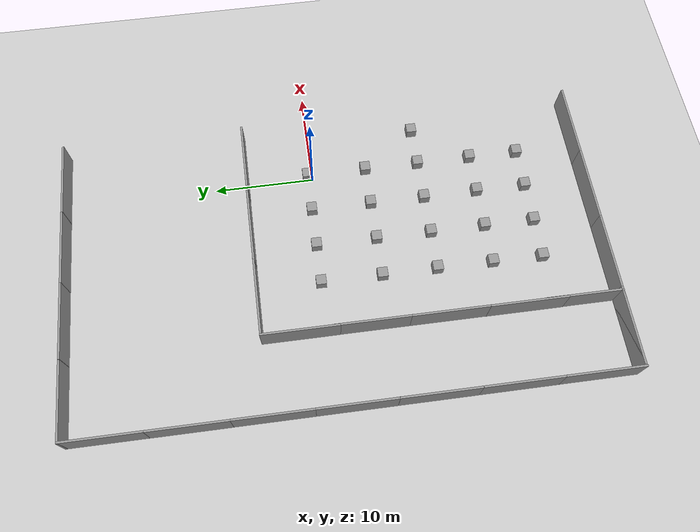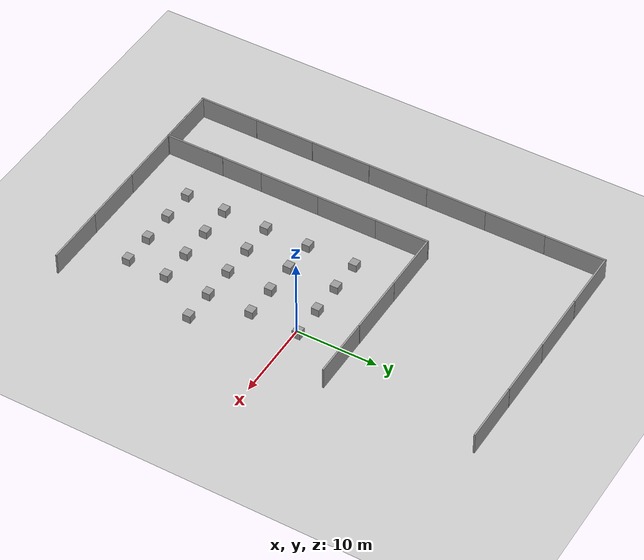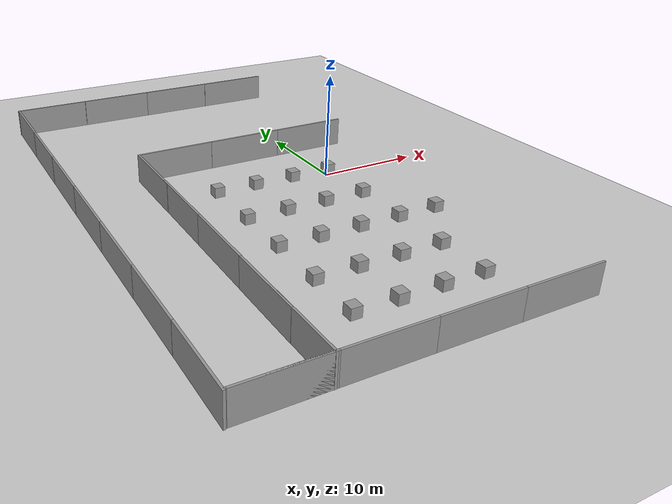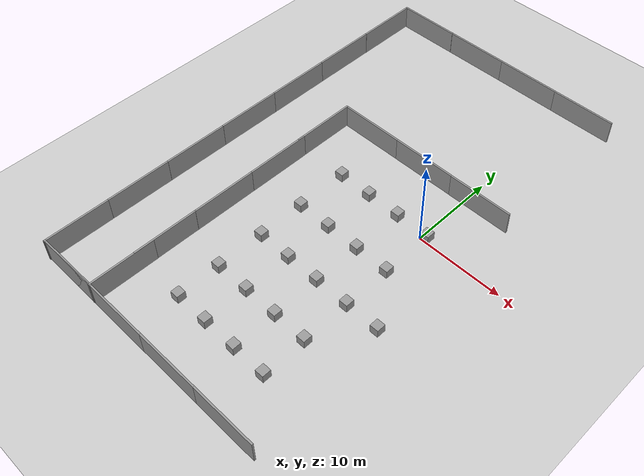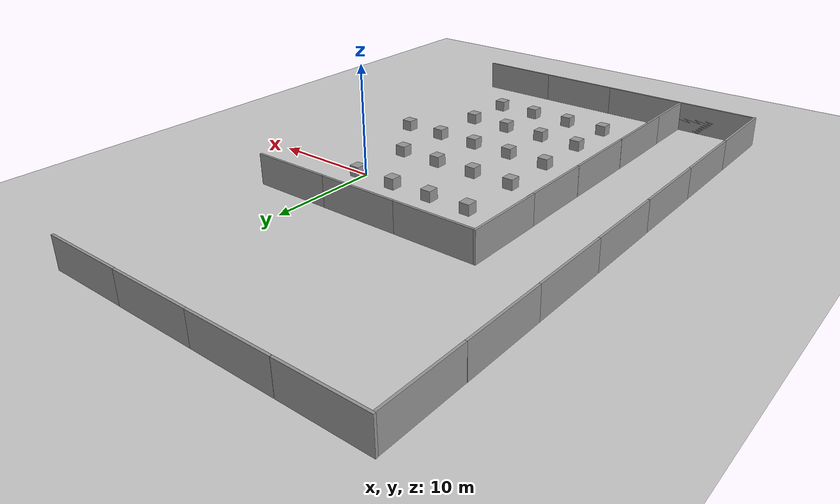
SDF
<sdf version="1.6">
 <world name="default">
  <model name="ground_plane">
   <static>1</static>
   <link name="link">
    <collision name="collision">
     <geometry><plane><normal>0 0 1</normal><size>100 100</size></plane></geometry>
     <surface>
      <contact><collide_bitmask>65535</collide_bitmask></contact>
      <friction><ode><mu>100</mu><mu2>50</mu2></ode></friction>
     </surface>
    </collision>
    <visual name="visual">
     <cast_shadows>0</cast_shadows>
     <geometry><plane><normal>0 0 1</normal><size>100 100</size></plane></geometry>
     <material>
      <script><uri>file://media/materials/scripts/gazebo.material</uri><name>Gazebo/Grey</name></script>
     </material>
    </visual>
   </link>
  </model>
  <model name="grey_wall">
   <static>1</static>
   <link name="link">
    <pose>0 0 1.4 0 -0 0</pose>
    <collision name="collision"><geometry><box><size>7.5 0.2 2.8</size></box></geometry></collision>
    <visual name="visual">
     <cast_shadows>0</cast_shadows>
     <geometry><box><size>7.5 0.2 2.8</size></box></geometry>
     <material>
      <script>
       <uri>model://grey_wall/materials/scripts</uri>
       <uri>model://grey_wall/materials/textures</uri>
       <name>vrc/grey_wall</name>
      </script>
     </material>
    </visual>
   </link>
   <pose>1.90151 24.9221 0 0 -0 0</pose>
  </model>
  <model name="grey_wall_0_clone_1">
   <static>1</static>
   <link name="link">
    <pose>0 0 1.4 0 -0 0</pose>
    <collision name="collision"><geometry><box><size>7.5 0.2 2.8</size></box></geometry></collision>
    <visual name="visual">
     <cast_shadows>0</cast_shadows>
     <geometry><box><size>7.5 0.2 2.8</size></box></geometry>
     <material>
      <script>
       <uri>model://grey_wall/materials/scripts</uri>
       <uri>model://grey_wall/materials/textures</uri>
       <name>vrc/grey_wall</name>
      </script>
     </material>
    </visual>
   </link>
   <pose>-5.60602 24.9338 0 0 -0 0</pose>
  </model>
  <model name="grey_wall_0_clone_2">
   <static>1</static>
   <link name="link">
    <pose>0 0 1.4 0 -0 0</pose>
    <collision name="collision"><geometry><box><size>7.5 0.2 2.8</size></box></geometry></collision>
    <visual name="visual">
     <cast_shadows>0</cast_shadows>
     <geometry><box><size>7.5 0.2 2.8</size></box></geometry>
     <material>
      <script>
       <uri>model://grey_wall/materials/scripts</uri>
       <uri>model://grey_wall/materials/textures</uri>
       <name>vrc/grey_wall</name>
      </script>
     </material>
    </visual>
   </link>
   <pose>-13.0699 24.9384 0 0 -0 0</pose>
  </model>
  <model name="grey_wall_0_clone_3">
   <static>1</static>
   <link name="link">
    <pose>0 0 1.4 0 -0 0</pose>
    <collision name="collision"><geometry><box><size>7.5 0.2 2.8</size></box></geometry></collision>
    <visual name="visual">
     <cast_shadows>0</cast_shadows>
     <geometry><box><size>7.5 0.2 2.8</size></box></geometry>
     <material>
      <script>
       <uri>model://grey_wall/materials/scripts</uri>
       <uri>model://grey_wall/materials/textures</uri>
       <name>vrc/grey_wall</name>
      </script>
     </material>
    </visual>
   </link>
   <pose>-20.595 24.9391 0 0 -0 0</pose>
  </model>
  <model name="grey_wall_0_clone_4">
   <static>1</static>
   <link name="link">
    <pose>0 0 1.4 0 -0 0</pose>
    <collision name="collision"><geometry><box><size>7.5 0.2 2.8</size></box></geometry></collision>
    <visual name="visual">
     <cast_shadows>0</cast_shadows>
     <geometry><box><size>7.5 0.2 2.8</size></box></geometry>
     <material>
      <script>
       <uri>model://grey_wall/materials/scripts</uri>
       <uri>model://grey_wall/materials/textures</uri>
       <name>vrc/grey_wall</name>
      </script>
     </material>
    </visual>
   </link>
   <pose>-24.228 21.2835 0 0 -0 1.57</pose>
  </model>
  <model name="grey_wall_0_clone_4_clone">
   <static>1</static>
   <link name="link">
    <pose>0 0 1.4 0 -0 0</pose>
    <collision name="collision"><geometry><box><size>7.5 0.2 2.8</size></box></geometry></collision>
    <visual name="visual">
     <cast_shadows>0</cast_shadows>
     <geometry><box><size>7.5 0.2 2.8</size></box></geometry>
     <material>
      <script>
       <uri>model://grey_wall/materials/scripts</uri>
       <uri>model://grey_wall/materials/textures</uri>
       <name>vrc/grey_wall</name>
      </script>
     </material>
    </visual>
   </link>
   <pose>-24.2399 13.7777 0 0 -0 1.57</pose>
  </model>
  <model name="grey_wall_0_clone_4_clone_0">
   <static>1</static>
   <link name="link">
    <pose>0 0 1.4 0 -0 0</pose>
    <collision name="collision"><geometry><box><size>7.5 0.2 2.8</size></box></geometry></collision>
    <visual name="visual">
     <cast_shadows>0</cast_shadows>
     <geometry><box><size>7.5 0.2 2.8</size></box></geometry>
     <material>
      <script>
       <uri>model://grey_wall/materials/scripts</uri>
       <uri>model://grey_wall/materials/textures</uri>
       <name>vrc/grey_wall</name>
      </script>
     </material>
    </visual>
   </link>
   <pose>-24.2386 6.27919 0 0 -0 1.57</pose>
  </model>
  <model name="grey_wall_0_clone_4_clone_1">
   <static>1</static>
   <link name="link">
    <pose>0 0 1.4 0 -0 0</pose>
    <collision name="collision"><geometry><box><size>7.5 0.2 2.8</size></box></geometry></collision>
    <visual name="visual">
     <cast_shadows>0</cast_shadows>
     <geometry><box><size>7.5 0.2 2.8</size></box></geometry>
     <material>
      <script>
       <uri>model://grey_wall/materials/scripts</uri>
       <uri>model://grey_wall/materials/textures</uri>
       <name>vrc/grey_wall</name>
      </script>
     </material>
    </visual>
   </link>
   <pose>-24.2386 -1.21435 0 0 -0 1.57</pose>
  </model>
  <model name="grey_wall_0_clone_4_clone_2">
   <static>1</static>
   <link name="link">
    <pose>0 0 1.4 0 -0 0</pose>
    <collision name="collision"><geometry><box><size>7.5 0.2 2.8</size></box></geometry></collision>
    <visual name="visual">
     <cast_shadows>0</cast_shadows>
     <geometry><box><size>7.5 0.2 2.8</size></box></geometry>
     <material>
      <script>
       <uri>model://grey_wall/materials/scripts</uri>
       <uri>model://grey_wall/materials/textures</uri>
       <name>vrc/grey_wall</name>
      </script>
     </material>
    </visual>
   </link>
   <pose>-24.2386 -8.72176 0 0 -0 1.57</pose>
  </model>
  <model name="grey_wall_0_clone_4_clone_3">
   <static>1</static>
   <link name="link">
    <pose>0 0 1.4 0 -0 0</pose>
    <collision name="collision"><geometry><box><size>7.5 0.2 2.8</size></box></geometry></collision>
    <visual name="visual">
     <cast_shadows>0</cast_shadows>
     <geometry><box><size>7.5 0.2 2.8</size></box></geometry>
     <material>
      <script>
       <uri>model://grey_wall/materials/scripts</uri>
       <uri>model://grey_wall/materials/textures</uri>
       <name>vrc/grey_wall</name>
      </script>
     </material>
    </visual>
   </link>
   <pose>-24.2386 -16.2292 0 0 -0 1.57</pose>
  </model>
  <model name="grey_wall_0_clone_4_clone_4">
   <static>1</static>
   <link name="link">
    <pose>0 0 1.4 0 -0 0</pose>
    <collision name="collision"><geometry><box><size>7.5 0.2 2.8</size></box></geometry></collision>
    <visual name="visual">
     <cast_shadows>0</cast_shadows>
     <geometry><box><size>7.5 0.2 2.8</size></box></geometry>
     <material>
      <script>
       <uri>model://grey_wall/materials/scripts</uri>
       <uri>model://grey_wall/materials/textures</uri>
       <name>vrc/grey_wall</name>
      </script>
     </material>
    </visual>
   </link>
   <pose>-24.2386 -23.7365 0 0 -0 1.57</pose>
  </model>
  <model name="grey_wall_0_clone_0_clone_2">
   <static>1</static>
   <link name="link">
    <pose>0 0 1.4 0 -0 0</pose>
    <collision name="collision"><geometry><box><size>7.5 0.2 2.8</size></box></geometry></collision>
    <visual name="visual">
     <cast_shadows>0</cast_shadows>
     <geometry><box><size>7.5 0.2 2.8</size></box></geometry>
     <material>
      <script>
       <uri>model://grey_wall/materials/scripts</uri>
       <uri>model://grey_wall/materials/textures</uri>
       <name>vrc/grey_wall</name>
      </script>
     </material>
    </visual>
   </link>
   <pose>2.13266 -27.3265 0 0 -0 0</pose>
  </model>
  <model name="grey_wall_0_clone_0_clone_3">
   <static>1</static>
   <link name="link">
    <pose>0 0 1.4 0 -0 0</pose>
    <collision name="collision"><geometry><box><size>7.5 0.2 2.8</size></box></geometry></collision>
    <visual name="visual">
     <cast_shadows>0</cast_shadows>
     <geometry><box><size>7.5 0.2 2.8</size></box></geometry>
     <material>
      <script>
       <uri>model://grey_wall/materials/scripts</uri>
       <uri>model://grey_wall/materials/textures</uri>
       <name>vrc/grey_wall</name>
      </script>
     </material>
    </visual>
   </link>
   <pose>-5.3592 -27.3265 0 0 -0 0</pose>
  </model>
  <model name="grey_wall_0_clone_0_clone_4">
   <static>1</static>
   <link name="link">
    <pose>0 0 1.4 0 -0 0</pose>
    <collision name="collision"><geometry><box><size>7.5 0.2 2.8</size></box></geometry></collision>
    <visual name="visual">
     <cast_shadows>0</cast_shadows>
     <geometry><box><size>7.5 0.2 2.8</size></box></geometry>
     <material>
      <script>
       <uri>model://grey_wall/materials/scripts</uri>
       <uri>model://grey_wall/materials/textures</uri>
       <name>vrc/grey_wall</name>
      </script>
     </material>
    </visual>
   </link>
   <pose>-12.851 -27.3265 0 0 -0 0</pose>
  </model>
  <model name="grey_wall_0_clone_0_clone_5">
   <static>1</static>
   <link name="link">
    <pose>0 0 1.4 0 -0 0</pose>
    <collision name="collision"><geometry><box><size>7.5 0.2 2.8</size></box></geometry></collision>
    <visual name="visual">
     <cast_shadows>0</cast_shadows>
     <geometry><box><size>7.5 0.2 2.8</size></box></geometry>
     <material>
      <script>
       <uri>model://grey_wall/materials/scripts</uri>
       <uri>model://grey_wall/materials/textures</uri>
       <name>vrc/grey_wall</name>
      </script>
     </material>
    </visual>
   </link>
   <pose>-20.3187 -27.3265 0 0 -0 0</pose>
  </model>
  <model name="grey_wall_0_clone_0_clone_6">
   <static>1</static>
   <link name="link">
    <pose>0 0 1.4 0 -0 0</pose>
    <collision name="collision"><geometry><box><size>7.5 0.2 2.8</size></box></geometry></collision>
    <visual name="visual">
     <cast_shadows>0</cast_shadows>
     <geometry><box><size>7.5 0.2 2.8</size></box></geometry>
     <material>
      <script>
       <uri>model://grey_wall/materials/scripts</uri>
       <uri>model://grey_wall/materials/textures</uri>
       <name>vrc/grey_wall</name>
      </script>
     </material>
    </visual>
   </link>
   <pose>-20.5846 -27.3265 0 0 -0 0</pose>
  </model>
  <model name="grey_wall_0_clone_0_clone_1_clone_2">
   <static>1</static>
   <link name="link">
    <pose>0 0 1.4 0 -0 0</pose>
    <collision name="collision"><geometry><box><size>7.5 0.2 2.8</size></box></geometry></collision>
    <visual name="visual">
     <cast_shadows>0</cast_shadows>
     <geometry><box><size>7.5 0.2 2.8</size></box></geometry>
     <material>
      <script>
       <uri>model://grey_wall/materials/scripts</uri>
       <uri>model://grey_wall/materials/textures</uri>
       <name>vrc/grey_wall</name>
      </script>
     </material>
    </visual>
   </link>
   <pose>1.95288 6.70206 0 0 -0 0</pose>
  </model>
  <model name="grey_wall_0_clone_0_clone_1_clone_3">
   <static>1</static>
   <link name="link">
    <pose>0 0 1.4 0 -0 0</pose>
    <collision name="collision"><geometry><box><size>7.5 0.2 2.8</size></box></geometry></collision>
    <visual name="visual">
     <cast_shadows>0</cast_shadows>
     <geometry><box><size>7.5 0.2 2.8</size></box></geometry>
     <material>
      <script>
       <uri>model://grey_wall/materials/scripts</uri>
       <uri>model://grey_wall/materials/textures</uri>
       <name>vrc/grey_wall</name>
      </script>
     </material>
    </visual>
   </link>
   <pose>-5.54319 6.71846 0 0 -0 0</pose>
  </model>
  <model name="grey_wall_0_clone_0_clone_1_clone_4">
   <static>1</static>
   <link name="link">
    <pose>0 0 1.4 0 -0 0</pose>
    <collision name="collision"><geometry><box><size>7.5 0.2 2.8</size></box></geometry></collision>
    <visual name="visual">
     <cast_shadows>0</cast_shadows>
     <geometry><box><size>7.5 0.2 2.8</size></box></geometry>
     <material>
      <script>
       <uri>model://grey_wall/materials/scripts</uri>
       <uri>model://grey_wall/materials/textures</uri>
       <name>vrc/grey_wall</name>
      </script>
     </material>
    </visual>
   </link>
   <pose>-13.0154 6.72469 0 0 -0 0</pose>
  </model>
  <model name="grey_wall_0_clone_4_clone_2_clone">
   <static>1</static>
   <link name="link">
    <pose>0 0 1.4 0 -0 0</pose>
    <collision name="collision"><geometry><box><size>7.5 0.2 2.8</size></box></geometry></collision>
    <visual name="visual">
     <cast_shadows>0</cast_shadows>
     <geometry><box><size>7.5 0.2 2.8</size></box></geometry>
     <material>
      <script>
       <uri>model://grey_wall/materials/scripts</uri>
       <uri>model://grey_wall/materials/textures</uri>
       <name>vrc/grey_wall</name>
      </script>
     </material>
    </visual>
   </link>
   <pose>-16.8376 -3.60853 0 0 -0 1.57</pose>
  </model>
  <model name="grey_wall_0_clone_4_clone_2_clone_0">
   <static>1</static>
   <link name="link">
    <pose>0 0 1.4 0 -0 0</pose>
    <collision name="collision"><geometry><box><size>7.5 0.2 2.8</size></box></geometry></collision>
    <visual name="visual">
     <cast_shadows>0</cast_shadows>
     <geometry><box><size>7.5 0.2 2.8</size></box></geometry>
     <material>
      <script>
       <uri>model://grey_wall/materials/scripts</uri>
       <uri>model://grey_wall/materials/textures</uri>
       <name>vrc/grey_wall</name>
      </script>
     </material>
    </visual>
   </link>
   <pose>-16.8489 -11.0683 0 0 -0 1.57</pose>
  </model>
  <model name="grey_wall_0_clone_4_clone_2_clone_1">
   <static>1</static>
   <link name="link">
    <pose>0 0 1.4 0 -0 0</pose>
    <collision name="collision"><geometry><box><size>7.5 0.2 2.8</size></box></geometry></collision>
    <visual name="visual">
     <cast_shadows>0</cast_shadows>
     <geometry><box><size>7.5 0.2 2.8</size></box></geometry>
     <material>
      <script>
       <uri>model://grey_wall/materials/scripts</uri>
       <uri>model://grey_wall/materials/textures</uri>
       <name>vrc/grey_wall</name>
      </script>
     </material>
    </visual>
   </link>
   <pose>-16.8652 -18.4814 0 0 -0 1.57</pose>
  </model>
  <model name="grey_wall_0_clone_4_clone_2_clone_2">
   <static>1</static>
   <link name="link">
    <pose>0 0 1.4 0 -0 0</pose>
    <collision name="collision"><geometry><box><size>7.5 0.2 2.8</size></box></geometry></collision>
    <visual name="visual">
     <cast_shadows>0</cast_shadows>
     <geometry><box><size>7.5 0.2 2.8</size></box></geometry>
     <material>
      <script>
       <uri>model://grey_wall/materials/scripts</uri>
       <uri>model://grey_wall/materials/textures</uri>
       <name>vrc/grey_wall</name>
      </script>
     </material>
    </visual>
   </link>
   <pose>-16.8496 -23.7013 0 0 -0 1.57</pose>
  </model>
  <model name="grey_wall_0_clone_4_clone_2_clone_clone">
   <static>1</static>
   <link name="link">
    <pose>0 0 1.4 0 -0 0</pose>
    <collision name="collision"><geometry><box><size>7.5 0.2 2.8</size></box></geometry></collision>
    <visual name="visual">
     <cast_shadows>0</cast_shadows>
     <geometry><box><size>7.5 0.2 2.8</size></box></geometry>
     <material>
      <script>
       <uri>model://grey_wall/materials/scripts</uri>
       <uri>model://grey_wall/materials/textures</uri>
       <name>vrc/grey_wall</name>
      </script>
     </material>
    </visual>
   </link>
   <pose>-16.8486 3.08672 0 0 -0 1.57</pose>
  </model>
  <model name="unit_box">
   <pose>-11.5019 0.522953 0.499995 1e-05 -0 0</pose>
   <link name="link">
    <inertial>
     <mass>1</mass>
     <inertia>
      <ixx>0.166667</ixx>
      <ixy>0</ixy>
      <ixz>0</ixz>
      <iyy>0.166667</iyy>
      <iyz>0</iyz>
      <izz>0.166667</izz>
     </inertia>
    </inertial>
    <collision name="collision"><geometry><box><size>1 1 1</size></box></geometry></collision>
    <visual name="visual">
     <geometry><box><size>1 1 1</size></box></geometry>
     <material>
      <script><name>Gazebo/Grey</name><uri>file://media/materials/scripts/gazebo.material</uri></script>
     </material>
    </visual>
   </link>
  </model>
  <model name="unit_box_0">
   <pose>-11.4973 -5.5107 0.499995 0 -1e-05 0</pose>
   <link name="link">
    <inertial>
     <mass>1</mass>
     <inertia>
      <ixx>0.166667</ixx>
      <ixy>0</ixy>
      <ixz>0</ixz>
      <iyy>0.166667</iyy>
      <iyz>0</iyz>
      <izz>0.166667</izz>
     </inertia>
    </inertial>
    <collision name="collision"><geometry><box><size>1 1 1</size></box></geometry></collision>
    <visual name="visual">
     <geometry><box><size>1 1 1</size></box></geometry>
     <material>
      <script><name>Gazebo/Grey</name><uri>file://media/materials/scripts/gazebo.material</uri></script>
     </material>
    </visual>
   </link>
  </model>
  <model name="unit_box_1">
   <pose>-11.5365 -21.4653 0.499995 0 -1e-05 0</pose>
   <link name="link">
    <inertial>
     <mass>1</mass>
     <inertia>
      <ixx>0.166667</ixx>
      <ixy>0</ixy>
      <ixz>0</ixz>
      <iyy>0.166667</iyy>
      <iyz>0</iyz>
      <izz>0.166667</izz>
     </inertia>
    </inertial>
    <collision name="collision"><geometry><box><size>1 1 1</size></box></geometry></collision>
    <visual name="visual">
     <geometry><box><size>1 1 1</size></box></geometry>
     <material>
      <script><name>Gazebo/Grey</name><uri>file://media/materials/scripts/gazebo.material</uri></script>
     </material>
    </visual>
   </link>
  </model>
  <model name="unit_box_2">
   <pose>-11.5091 -16.4997 0.499995 1e-05 -0 0</pose>
   <link name="link">
    <inertial>
     <mass>1</mass>
     <inertia>
      <ixx>0.166667</ixx>
      <ixy>0</ixy>
      <ixz>0</ixz>
      <iyy>0.166667</iyy>
      <iyz>0</iyz>
      <izz>0.166667</izz>
     </inertia>
    </inertial>
    <collision name="collision"><geometry><box><size>1 1 1</size></box></geometry></collision>
    <visual name="visual">
     <geometry><box><size>1 1 1</size></box></geometry>
     <material>
      <script><name>Gazebo/Grey</name><uri>file://media/materials/scripts/gazebo.material</uri></script>
     </material>
    </visual>
   </link>
  </model>
  <model name="unit_box_3">
   <pose>-11.4818 -10.9731 0.499995 0 -1e-05 0</pose>
   <link name="link">
    <inertial>
     <mass>1</mass>
     <inertia>
      <ixx>0.166667</ixx>
      <ixy>0</ixy>
      <ixz>0</ixz>
      <iyy>0.166667</iyy>
      <iyz>0</iyz>
      <izz>0.166667</izz>
     </inertia>
    </inertial>
    <collision name="collision"><geometry><box><size>1 1 1</size></box></geometry></collision>
    <visual name="visual">
     <geometry><box><size>1 1 1</size></box></geometry>
     <material>
      <script><name>Gazebo/Grey</name><uri>file://media/materials/scripts/gazebo.material</uri></script>
     </material>
    </visual>
   </link>
  </model>
  <model name="unit_box_4">
   <pose>-7.52762 -21.5164 0.499995 1e-05 -0 0</pose>
   <link name="link">
    <inertial>
     <mass>1</mass>
     <inertia>
      <ixx>0.166667</ixx>
      <ixy>0</ixy>
      <ixz>0</ixz>
      <iyy>0.166667</iyy>
      <iyz>0</iyz>
      <izz>0.166667</izz>
     </inertia>
    </inertial>
    <collision name="collision"><geometry><box><size>1 1 1</size></box></geometry></collision>
    <visual name="visual">
     <geometry><box><size>1 1 1</size></box></geometry>
     <material>
      <script><name>Gazebo/Grey</name><uri>file://media/materials/scripts/gazebo.material</uri></script>
     </material>
    </visual>
   </link>
  </model>
  <model name="unit_box_5">
   <pose>-3.49616 -21.5203 0.499995 0 -1e-05 0</pose>
   <link name="link">
    <inertial>
     <mass>1</mass>
     <inertia>
      <ixx>0.166667</ixx>
      <ixy>0</ixy>
      <ixz>0</ixz>
      <iyy>0.166667</iyy>
      <iyz>0</iyz>
      <izz>0.166667</izz>
     </inertia>
    </inertial>
    <collision name="collision"><geometry><box><size>1 1 1</size></box></geometry></collision>
    <visual name="visual">
     <geometry><box><size>1 1 1</size></box></geometry>
     <material>
      <script><name>Gazebo/Grey</name><uri>file://media/materials/scripts/gazebo.material</uri></script>
     </material>
    </visual>
   </link>
  </model>
  <model name="unit_box_6">
   <pose>0.487164 -21.5195 0.499995 1e-05 -0 0</pose>
   <link name="link">
    <inertial>
     <mass>1</mass>
     <inertia>
      <ixx>0.166667</ixx>
      <ixy>0</ixy>
      <ixz>0</ixz>
      <iyy>0.166667</iyy>
      <iyz>0</iyz>
      <izz>0.166667</izz>
     </inertia>
    </inertial>
    <collision name="collision"><geometry><box><size>1 1 1</size></box></geometry></collision>
    <visual name="visual">
     <geometry><box><size>1 1 1</size></box></geometry>
     <material>
      <script><name>Gazebo/Grey</name><uri>file://media/materials/scripts/gazebo.material</uri></script>
     </material>
    </visual>
   </link>
  </model>
  <model name="unit_box_13">
   <pose>-7.50779 -16.4967 0.499995 0 -1e-05 0</pose>
   <link name="link">
    <inertial>
     <mass>1</mass>
     <inertia>
      <ixx>0.166667</ixx>
      <ixy>0</ixy>
      <ixz>0</ixz>
      <iyy>0.166667</iyy>
      <iyz>0</iyz>
      <izz>0.166667</izz>
     </inertia>
    </inertial>
    <collision name="collision"><geometry><box><size>1 1 1</size></box></geometry></collision>
    <visual name="visual">
     <geometry><box><size>1 1 1</size></box></geometry>
     <material>
      <script><name>Gazebo/Grey</name><uri>file://media/materials/scripts/gazebo.material</uri></script>
     </material>
    </visual>
   </link>
  </model>
  <model name="unit_box_14">
   <pose>-3.48777 -16.5036 0.499995 1e-05 -0 0</pose>
   <link name="link">
    <inertial>
     <mass>1</mass>
     <inertia>
      <ixx>0.166667</ixx>
      <ixy>0</ixy>
      <ixz>0</ixz>
      <iyy>0.166667</iyy>
      <iyz>0</iyz>
      <izz>0.166667</izz>
     </inertia>
    </inertial>
    <collision name="collision"><geometry><box><size>1 1 1</size></box></geometry></collision>
    <visual name="visual">
     <geometry><box><size>1 1 1</size></box></geometry>
     <material>
      <script><name>Gazebo/Grey</name><uri>file://media/materials/scripts/gazebo.material</uri></script>
     </material>
    </visual>
   </link>
  </model>
  <model name="unit_box_15">
   <pose>0.501689 -16.5307 0.499995 0 -1e-05 0</pose>
   <link name="link">
    <inertial>
     <mass>1</mass>
     <inertia>
      <ixx>0.166667</ixx>
      <ixy>0</ixy>
      <ixz>0</ixz>
      <iyy>0.166667</iyy>
      <iyz>0</iyz>
      <izz>0.166667</izz>
     </inertia>
    </inertial>
    <collision name="collision"><geometry><box><size>1 1 1</size></box></geometry></collision>
    <visual name="visual">
     <geometry><box><size>1 1 1</size></box></geometry>
     <material>
      <script><name>Gazebo/Grey</name><uri>file://media/materials/scripts/gazebo.material</uri></script>
     </material>
    </visual>
   </link>
  </model>
  <model name="unit_box_3_clone">
   <pose>-7.52311 -11.0252 0.499995 0 1e-05 0</pose>
   <link name="link">
    <inertial>
     <mass>1</mass>
     <inertia>
      <ixx>0.166667</ixx>
      <ixy>0</ixy>
      <ixz>0</ixz>
      <iyy>0.166667</iyy>
      <iyz>0</iyz>
      <izz>0.166667</izz>
     </inertia>
    </inertial>
    <collision name="collision"><geometry><box><size>1 1 1</size></box></geometry></collision>
    <visual name="visual">
     <geometry><box><size>1 1 1</size></box></geometry>
     <material>
      <script><name>Gazebo/Grey</name><uri>file://media/materials/scripts/gazebo.material</uri></script>
     </material>
    </visual>
   </link>
  </model>
  <model name="unit_box_22">
   <pose>-3.54744 -11.0193 0.499995 0 -1e-05 0</pose>
   <link name="link">
    <inertial>
     <mass>1</mass>
     <inertia>
      <ixx>0.166667</ixx>
      <ixy>0</ixy>
      <ixz>0</ixz>
      <iyy>0.166667</iyy>
      <iyz>0</iyz>
      <izz>0.166667</izz>
     </inertia>
    </inertial>
    <collision name="collision"><geometry><box><size>1 1 1</size></box></geometry></collision>
    <visual name="visual">
     <geometry><box><size>1 1 1</size></box></geometry>
     <material>
      <script><name>Gazebo/Grey</name><uri>file://media/materials/scripts/gazebo.material</uri></script>
     </material>
    </visual>
   </link>
  </model>
  <model name="unit_box_23">
   <pose>0.499173 -11.0341 0.499995 1e-05 -0 0</pose>
   <link name="link">
    <inertial>
     <mass>1</mass>
     <inertia>
      <ixx>0.166667</ixx>
      <ixy>0</ixy>
      <ixz>0</ixz>
      <iyy>0.166667</iyy>
      <iyz>0</iyz>
      <izz>0.166667</izz>
     </inertia>
    </inertial>
    <collision name="collision"><geometry><box><size>1 1 1</size></box></geometry></collision>
    <visual name="visual">
     <geometry><box><size>1 1 1</size></box></geometry>
     <material>
      <script><name>Gazebo/Grey</name><uri>file://media/materials/scripts/gazebo.material</uri></script>
     </material>
    </visual>
   </link>
  </model>
  <model name="unit_box_24">
   <pose>4.45517 -11.0267 0.499995 0 -1e-05 0</pose>
   <link name="link">
    <inertial>
     <mass>1</mass>
     <inertia>
      <ixx>0.166667</ixx>
      <ixy>0</ixy>
      <ixz>0</ixz>
      <iyy>0.166667</iyy>
      <iyz>0</iyz>
      <izz>0.166667</izz>
     </inertia>
    </inertial>
    <collision name="collision"><geometry><box><size>1 1 1</size></box></geometry></collision>
    <visual name="visual">
     <geometry><box><size>1 1 1</size></box></geometry>
     <material>
      <script><name>Gazebo/Grey</name><uri>file://media/materials/scripts/gazebo.material</uri></script>
     </material>
    </visual>
   </link>
  </model>
  <model name="unit_box_30">
   <pose>-7.4981 -5.52977 0.499995 0 -1e-05 0</pose>
   <link name="link">
    <inertial>
     <mass>1</mass>
     <inertia>
      <ixx>0.166667</ixx>
      <ixy>0</ixy>
      <ixz>0</ixz>
      <iyy>0.166667</iyy>
      <iyz>0</iyz>
      <izz>0.166667</izz>
     </inertia>
    </inertial>
    <collision name="collision"><geometry><box><size>1 1 1</size></box></geometry></collision>
    <visual name="visual">
     <geometry><box><size>1 1 1</size></box></geometry>
     <material>
      <script><name>Gazebo/Grey</name><uri>file://media/materials/scripts/gazebo.material</uri></script>
     </material>
    </visual>
   </link>
  </model>
  <model name="unit_box_31">
   <pose>-3.51021 -5.53005 0.499995 1e-05 -0 0</pose>
   <link name="link">
    <inertial>
     <mass>1</mass>
     <inertia>
      <ixx>0.166667</ixx>
      <ixy>0</ixy>
      <ixz>0</ixz>
      <iyy>0.166667</iyy>
      <iyz>0</iyz>
      <izz>0.166667</izz>
     </inertia>
    </inertial>
    <collision name="collision"><geometry><box><size>1 1 1</size></box></geometry></collision>
    <visual name="visual">
     <geometry><box><size>1 1 1</size></box></geometry>
     <material>
      <script><name>Gazebo/Grey</name><uri>file://media/materials/scripts/gazebo.material</uri></script>
     </material>
    </visual>
   </link>
  </model>
  <model name="unit_box_32">
   <pose>0.496503 -5.53213 0.499995 0 -1e-05 0</pose>
   <link name="link">
    <inertial>
     <mass>1</mass>
     <inertia>
      <ixx>0.166667</ixx>
      <ixy>0</ixy>
      <ixz>0</ixz>
      <iyy>0.166667</iyy>
      <iyz>0</iyz>
      <izz>0.166667</izz>
     </inertia>
    </inertial>
    <collision name="collision"><geometry><box><size>1 1 1</size></box></geometry></collision>
    <visual name="visual">
     <geometry><box><size>1 1 1</size></box></geometry>
     <material>
      <script><name>Gazebo/Grey</name><uri>file://media/materials/scripts/gazebo.material</uri></script>
     </material>
    </visual>
   </link>
  </model>
  <model name="unit_box_39">
   <pose>-7.50439 0.496192 0.499995 0 1e-05 0</pose>
   <link name="link">
    <inertial>
     <mass>1</mass>
     <inertia>
      <ixx>0.166667</ixx>
      <ixy>0</ixy>
      <ixz>0</ixz>
      <iyy>0.166667</iyy>
      <iyz>0</iyz>
      <izz>0.166667</izz>
     </inertia>
    </inertial>
    <collision name="collision"><geometry><box><size>1 1 1</size></box></geometry></collision>
    <visual name="visual">
     <geometry><box><size>1 1 1</size></box></geometry>
     <material>
      <script><name>Gazebo/Grey</name><uri>file://media/materials/scripts/gazebo.material</uri></script>
     </material>
    </visual>
   </link>
  </model>
  <model name="unit_box_40">
   <pose>-3.49769 0.494085 0.499995 -1e-05 -0 -0</pose>
   <link name="link">
    <inertial>
     <mass>1</mass>
     <inertia>
      <ixx>0.166667</ixx>
      <ixy>0</ixy>
      <ixz>0</ixz>
      <iyy>0.166667</iyy>
      <iyz>0</iyz>
      <izz>0.166667</izz>
     </inertia>
    </inertial>
    <collision name="collision"><geometry><box><size>1 1 1</size></box></geometry></collision>
    <visual name="visual">
     <geometry><box><size>1 1 1</size></box></geometry>
     <material>
      <script><name>Gazebo/Grey</name><uri>file://media/materials/scripts/gazebo.material</uri></script>
     </material>
    </visual>
   </link>
  </model>
  <model name="unit_box_41">
   <pose>0.509026 0.492033 0.499995 0 1e-05 0</pose>
   <link name="link">
    <inertial>
     <mass>1</mass>
     <inertia>
      <ixx>0.166667</ixx>
      <ixy>0</ixy>
      <ixz>0</ixz>
      <iyy>0.166667</iyy>
      <iyz>0</iyz>
      <izz>0.166667</izz>
     </inertia>
    </inertial>
    <collision name="collision"><geometry><box><size>1 1 1</size></box></geometry></collision>
    <visual name="visual">
     <geometry><box><size>1 1 1</size></box></geometry>
     <material>
      <script><name>Gazebo/Grey</name><uri>file://media/materials/scripts/gazebo.material</uri></script>
     </material>
    </visual>
   </link>
  </model>
 </world>
</sdf>
